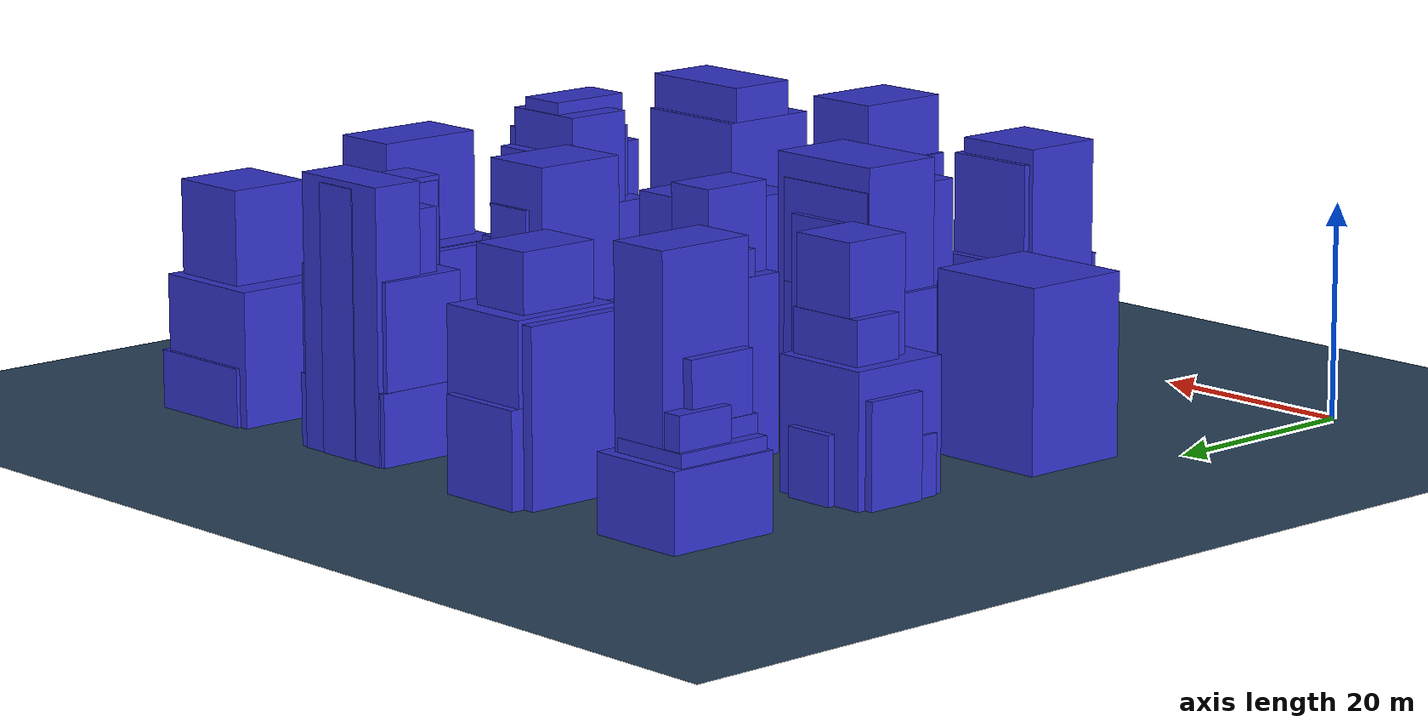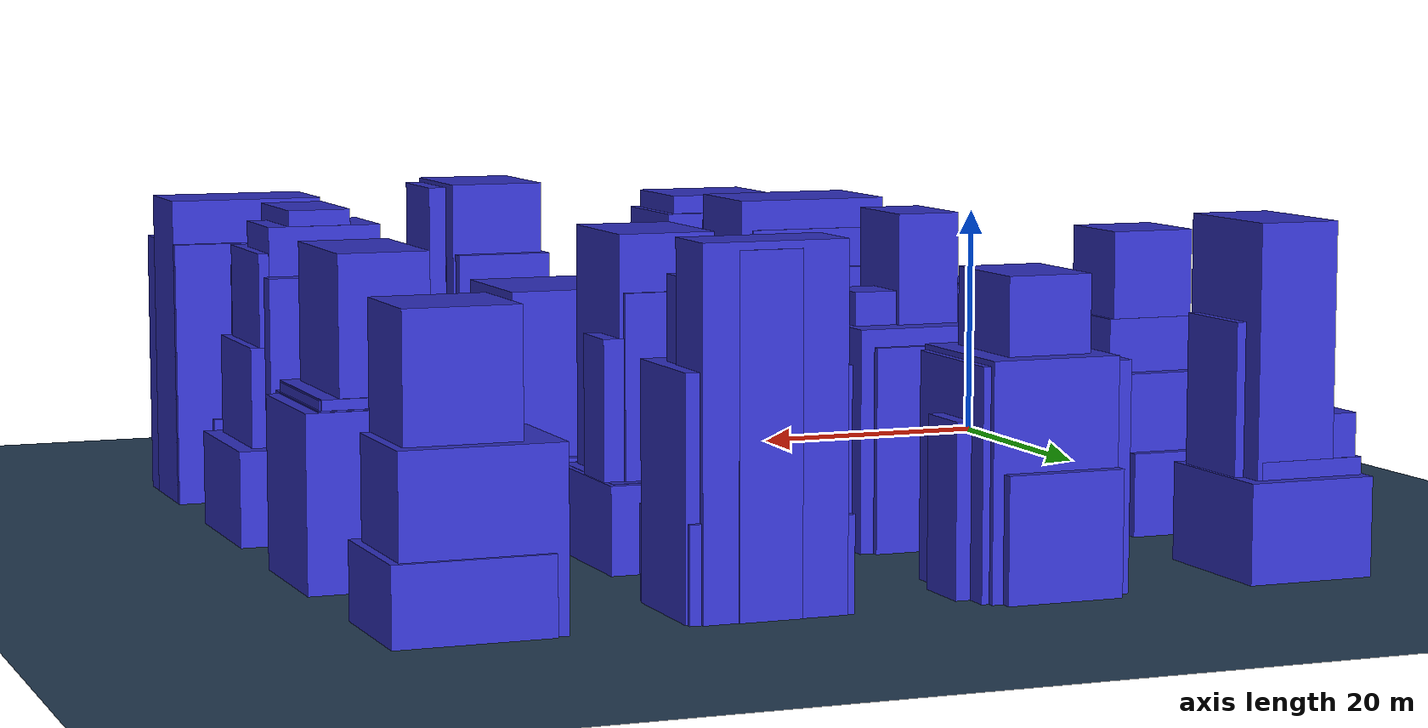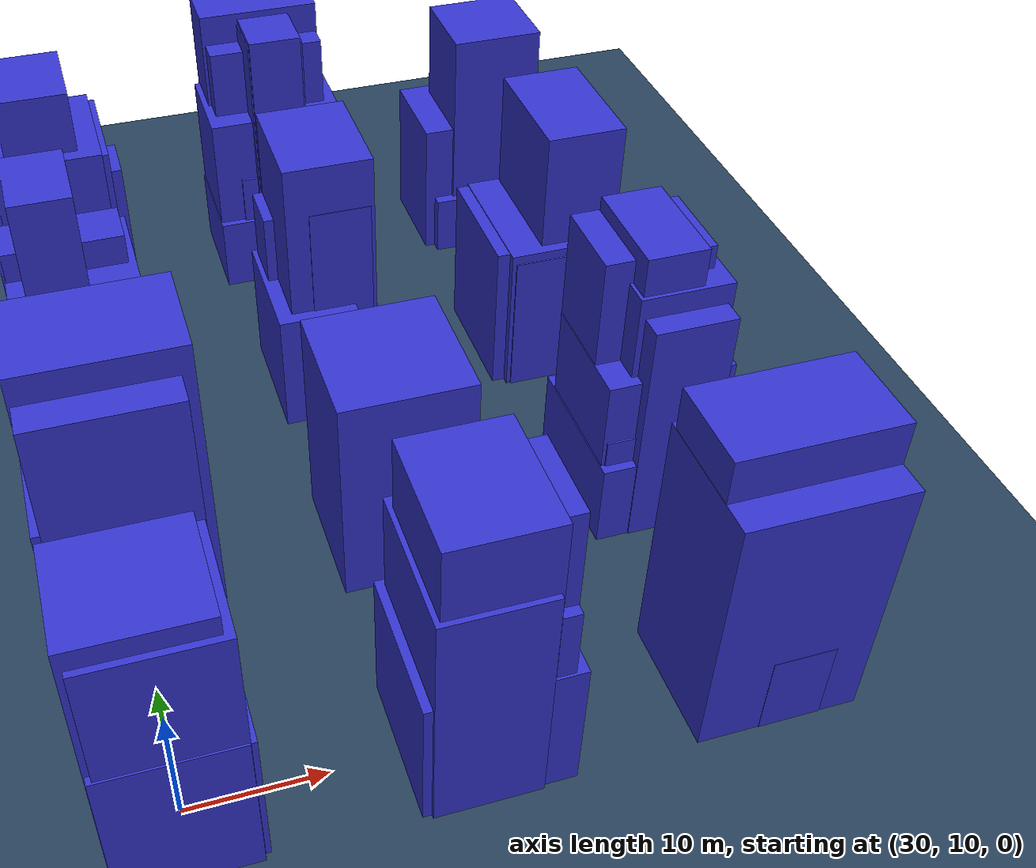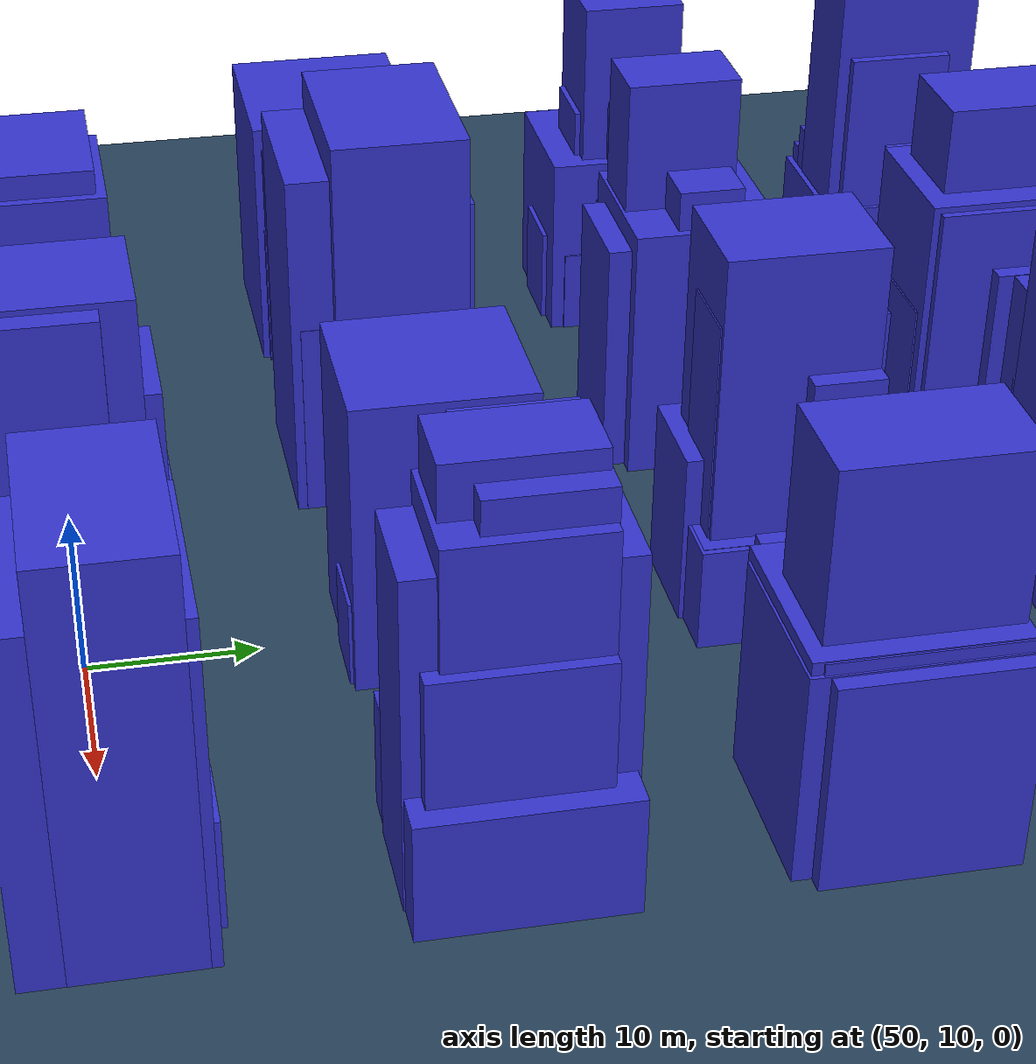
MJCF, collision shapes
<mujoco model="Skydio X2 scene">

  <statistic center="0 0 0.1" extent="0.6" meansize=".05"/>

  <visual>
    <headlight diffuse="0.6 0.6 0.6" ambient="0.3 0.3 0.3" specular="0 0 0"/>
    <map haze=".5" zfar="100" znear="0.01"/>
    <rgba haze="0 0 0 0"/>
    <global azimuth="-20" elevation="20" ellipsoidinertia="true" offwidth="800" offheight="600"/>
  </visual>

  <asset>
    <texture type="skybox" builtin="gradient" rgb1="0.3 0.5 0.7" rgb2="0 0 0" width="512" height="3072"/>
    <texture type="2d" name="groundplane" builtin="checker" mark="edge" rgb1="0.2 0.3 0.4" rgb2="0.1 0.2 0.3"
      markrgb="0.8 0.8 0.8" width="300" height="300"/>
    <material name="groundplane" texture="groundplane" texuniform="true" texrepeat="5 5" reflectance="0.2"/>
    <material name="obstacle_material" rgba="0.2 0.2 0.8 1" specular="0.5" shininess="0.6"/>
  </asset>

  <include file="x2.xml"/>
  <include file="obstacles.xml"/>

  <worldbody>
    <light pos="40 40 50" dir="-1 -1 -2" directional="true"/>
    <geom name="floor" size="0 0 0.05" type="plane" material="groundplane"/>
  </worldbody>
</mujoco>

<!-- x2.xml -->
<mujoco model="Skydio X2">
  <compiler autolimits="true" assetdir="assets"/>

  <option timestep="0.01" density="1.225" viscosity="1.8e-5"/>

  <default>
    <default class="x2">
        <geom mass="0"/>
        <motor ctrlrange="0 13"/>
        <mesh scale="0.01 0.01 0.01"/>

        <default class="visual">
          <geom group="2" type="mesh" contype="0" conaffinity="0"/>
        </default>

        <default class="collision">
          <geom group="3" type="box"/>
          <default class="rotor">
            <geom type="ellipsoid" size=".13 .13 .01"/>
          </default>
      </default>
      <site group="5"/>
    </default>
  </default>

  <asset>
    <texture type="2d" file="X2_lowpoly_texture_SpinningProps_1024.png"/>
    <material name="phong3SG" texture="X2_lowpoly_texture_SpinningProps_1024"/>
    <material name="invisible" rgba="0 0 0 0"/>

    <mesh class="x2" file="X2_lowpoly.obj"/>
  </asset>

  <worldbody>
    <light name="spotlight" mode="targetbodycom" target="x2" pos="0 -1 2"/>
    <body>
      <geom type="cylinder" size="0.4 0.000001"></geom>
    </body>

    <body name="x2" pos="0 0 0" childclass="x2">
      <freejoint/>
      <camera name="track" pos="-1 0 .5" xyaxes="0 -1 0 1 0 2" mode="trackcom"/>
      <site name="imu" pos="0 0 .02"/>
      <geom material="phong3SG" mesh="X2_lowpoly" class="visual" quat="0 0 1 1"/>
      <geom class="collision" size=".06 .027 .02" pos=".04 0 .02"/>
      <geom class="collision" size=".06 .027 .02" pos=".04 0 .06"/>
      <geom class="collision" size=".05 .027 .02" pos="-.07 0 .065"/>
      <geom class="collision" size=".023 .017 .01" pos="-.137 .008 .065" quat="1 0 0 1"/>
      <geom name="rotor1" class="rotor" pos="-.14 -.18 .05" mass=".25"/>
      <geom name="rotor2" class="rotor" pos="-.14 .18 .05" mass=".25"/>
      <geom name="rotor3" class="rotor" pos=".14 .18 .08" mass=".25"/>
      <geom name="rotor4" class="rotor" pos=".14 -.18 .08" mass=".25"/>
      <geom size=".16 .04 .02" pos="0 0 0.02" type="ellipsoid" mass=".325" class="visual" material="invisible"/>
      <site name="thrust1" pos="-.14 -.18 .05"/>
      <site name="thrust2" pos="-.14 .18 .05"/>
      <site name="thrust3" pos=".14 .18 .08"/>
      <site name="thrust4" pos=".14 -.18 .08"/>
    </body>
  </worldbody>

  <actuator>
    <motor class="x2" name="thrust1" site="thrust1" gear="0 0 1 0 0 -.0201"/>
    <motor class="x2" name="thrust2" site="thrust2" gear="0 0 1 0 0  .0201"/>
    <motor class="x2" name="thrust3" site="thrust3" gear="0 0 1 0 0 -.0201"/>
    <motor class="x2" name="thrust4" site="thrust4" gear="0 0 1 0 0  .0201"/>
  </actuator>

  <sensor>
    <gyro name="body_gyro" site="imu"/>
    <accelerometer name="body_linacc" site="imu"/>
    <framepos name="body_pos" objtype="site" objname="imu"/>
    <framequat name="body_quat" objtype="site" objname="imu"/>
    <framelinvel name="body_linvel" objtype="site" objname="imu"/>
  </sensor>

  <keyframe>
    <key name="hover" qpos="0 0 .3 1 0 0 0" ctrl="3.2495625 3.2495625 3.2495625 3.2495625"/>
  </keyframe>
</mujoco>

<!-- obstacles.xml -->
<mujoco>
  <worldbody>
    <geom name="obstacle_0" type="box" pos="10.176185195074712 29.277001570633068 4.80893825622149" size="5.768807022739411 4.253152871382158 4.80893825622149" material="obstacle_material"/>
    <geom name="obstacle_1" type="box" pos="10.447883981068847 30.177890047636268 4.233646535077721" size="2.964101864104047 4.733054075301835 4.233646535077721" material="obstacle_material"/>
    <geom name="obstacle_2" type="box" pos="10.733274155749267 29.66004965196054 4.579416628681888" size="3.564242430292963 2.728944351152249 4.579416628681888" material="obstacle_material"/>
    <geom name="obstacle_3" type="box" pos="10.49918721760701 29.711111708350398 6.451502360018145" size="4.270801311279966 2.1252531698222334 6.451502360018145" material="obstacle_material"/>
    <geom name="obstacle_4" type="box" pos="10.245144888353797 30.012808407537406 7.708342600258237" size="5.706635463175177 4.9090879834256835 7.708342600258237" material="obstacle_material"/>
    <geom name="obstacle_5" type="box" pos="9.582183293439883 29.96998199970414 8.367511656638483" size="5.8446880973973965 5.378135394712606 8.367511656638483" material="obstacle_material"/>
    <geom name="obstacle_6" type="box" pos="10.385738919209246 29.766992707814637 4.152669390630025" size="5.861021229056553 4.4281369907467365 4.152669390630025" material="obstacle_material"/>
    <geom name="obstacle_7" type="box" pos="9.382438511756007 29.460428349170293 2.6407982271508446" size="2.062545626964776 3.693605922825478 2.6407982271508446" material="obstacle_material"/>
    <geom name="obstacle_8" type="box" pos="10.093626586331276 49.92846392761449 6.084657285442726" size="4.827429375390469 4.91602867216395 6.084657285442726" material="obstacle_material"/>
    <geom name="obstacle_9" type="box" pos="10.625497256991594 50.15300810169197 3.1355835028602366" size="2.463476238100519 5.452413703502376 3.1355835028602366" material="obstacle_material"/>
    <geom name="obstacle_10" type="box" pos="10.806409370669732 50.46749366409218 11.372127425763265" size="3.243929286862649 3.30073328810699 11.372127425763265" material="obstacle_material"/>
    <geom name="obstacle_11" type="box" pos="10.473889753420512 51.31520316177082 8.112771975694962" size="3.8888597006477967 2.4783769837532077 8.112771975694962" material="obstacle_material"/>
    <geom name="obstacle_12" type="box" pos="9.99618685340377 49.85148551856407 2.7541912674409517" size="5.083868719818244 3.9751823854575647 2.7541912674409517" material="obstacle_material"/>
    <geom name="obstacle_13" type="box" pos="10.700722356158739 48.932813009197034 7.585706911647028" size="2.431565707973218 2.1257167427469383 7.585706911647028" material="obstacle_material"/>
    <geom name="obstacle_14" type="box" pos="10.112965174566714 51.02365152734686 4.787981654916225" size="5.6302658957043725 2.9971689165954984 4.787981654916225" material="obstacle_material"/>
    <geom name="obstacle_15" type="box" pos="10.05492973675593 70.21330585101013 3.554942598302706" size="4.779139732158818 5.521871356061027 3.554942598302706" material="obstacle_material"/>
    <geom name="obstacle_16" type="box" pos="9.803988447930983 71.62989029483467 5.74345021005274" size="3.8261382819316414 2.873761748867338 5.74345021005274" material="obstacle_material"/>
    <geom name="obstacle_17" type="box" pos="12.043619830535455 69.28230379160155 8.976901205413624" size="2.488351818802694 3.4251913523078983 8.976901205413624" material="obstacle_material"/>
    <geom name="obstacle_18" type="box" pos="8.829500247686646 68.93379033754366 7.840894193754419" size="2.002081507981263 3.4102754253366783 7.840894193754419" material="obstacle_material"/>
    <geom name="obstacle_19" type="box" pos="9.51084049559271 69.88216679982762 4.182910421729305" size="3.9393198854359324 4.769744131561083 4.182910421729305" material="obstacle_material"/>
    <geom name="obstacle_20" type="box" pos="9.591314666265411 69.33202954650784 5.039154139343447" size="2.8750568782922805 4.232408008069363 5.039154139343447" material="obstacle_material"/>
    <geom name="obstacle_21" type="box" pos="10.854387319570865 69.84883017445333 12.47740485048942" size="2.9875042513544052 4.785217091359151 12.47740485048942" material="obstacle_material"/>
    <geom name="obstacle_22" type="box" pos="29.49609295766099 9.562037018586029 11.582658859666537" size="4.438257335919587 4.010716092915446 11.582658859666537" material="obstacle_material"/>
    <geom name="obstacle_23" type="box" pos="29.956930295179177 12.350956641228404 4.920552715115004" size="2.958247562667891 2.5795794883648924 4.920552715115004" material="obstacle_material"/>
    <geom name="obstacle_24" type="box" pos="29.836570327853753 9.978785710539245 6.177831327192532" size="4.688542189623515 5.046478461314869 6.177831327192532" material="obstacle_material"/>
    <geom name="obstacle_25" type="box" pos="30.033683773823647 9.618247448112133 10.85302495589238" size="4.529223322374316 4.534118843043579 10.85302495589238" material="obstacle_material"/>
    <geom name="obstacle_26" type="box" pos="28.423132288758175 10.409731928174814 9.275643618422825" size="3.2831202598869424 2.7460740415994165 9.275643618422825" material="obstacle_material"/>
    <geom name="obstacle_27" type="box" pos="28.39526938152413 10.276300916675773 4.243664290049915" size="2.066351315711424 4.048372233197124 4.243664290049915" material="obstacle_material"/>
    <geom name="obstacle_28" type="box" pos="30.20635408778621 8.946593370415089 5.9106635105025855" size="4.763750952409865 3.5469413852021496 5.9106635105025855" material="obstacle_material"/>
    <geom name="obstacle_29" type="box" pos="30.84724270258061 29.54710845633091 4.249549270959362" size="2.8362864829508556 4.165791895310264 4.249549270959362" material="obstacle_material"/>
    <geom name="obstacle_30" type="box" pos="30.444223154018864 30.926462418779757 12.154193512887936" size="5.928673373317743 4.066543565084055 12.154193512887936" material="obstacle_material"/>
    <geom name="obstacle_31" type="box" pos="29.522584918587732 30.23463756133262 9.503578299727714" size="4.233173814428392 5.5305453727573575 9.503578299727714" material="obstacle_material"/>
    <geom name="obstacle_32" type="box" pos="30.073842828054758 29.670164950701945 11.009284487675128" size="5.3866445689532245 5.425297167512371 11.009284487675128" material="obstacle_material"/>
    <geom name="obstacle_33" type="box" pos="29.749038930501726 29.977187858098013 6.222827665617431" size="5.742539976883789 5.141362604455773 6.222827665617431" material="obstacle_material"/>
    <geom name="obstacle_34" type="box" pos="29.76528397211858 50.290429374911334 9.418951976926932" size="4.654007076432224 2.0202463353848756 9.418951976926932" material="obstacle_material"/>
    <geom name="obstacle_35" type="box" pos="30.16641426896505 48.894910250638596 5.753996981592677" size="4.607845038010401 2.8970772378422396 5.753996981592677" material="obstacle_material"/>
    <geom name="obstacle_36" type="box" pos="30.009802267765807 50.126553192583756 8.183086033354716" size="4.985965620472099 4.5985315961888595 8.183086033354716" material="obstacle_material"/>
    <geom name="obstacle_37" type="box" pos="28.767171115642356 49.217050291285645 12.230105547524456" size="2.374699071312371 3.4708632122377345 12.230105547524456" material="obstacle_material"/>
    <geom name="obstacle_38" type="box" pos="30.374429392019984 49.66498455923707 7.526370931051921" size="3.5723908986670434 5.568186220708451 7.526370931051921" material="obstacle_material"/>
    <geom name="obstacle_39" type="box" pos="29.82499613524748 70.00073671883598 8.220041992091831" size="4.675696238652398 5.456670260287616 8.220041992091831" material="obstacle_material"/>
    <geom name="obstacle_40" type="box" pos="29.92659282197979 69.83015134436091 5.295603417967586" size="5.074216057225236 2.174415087017735 5.295603417967586" material="obstacle_material"/>
    <geom name="obstacle_41" type="box" pos="29.516140934121353 69.99691122541728 8.027649668354899" size="5.533976089065034 4.990875095589658 8.027649668354899" material="obstacle_material"/>
    <geom name="obstacle_42" type="box" pos="29.39628665357992 70.35803290614666 4.4091103115034604" size="4.289169876683353 5.921326334864183 4.4091103115034604" material="obstacle_material"/>
    <geom name="obstacle_43" type="box" pos="29.509564203661597 69.77698169483222 10.942131407263114" size="3.073899427560626 3.9411194971052623 10.942131407263114" material="obstacle_material"/>
    <geom name="obstacle_44" type="box" pos="30.419196249020487 70.93045098674644 6.086467812961639" size="5.720067339243329 2.2816645233981774 6.086467812961639" material="obstacle_material"/>
    <geom name="obstacle_45" type="box" pos="29.296113747717634 71.2683474982903 3.866213314420288" size="3.016654596278956 3.1811623536757523 3.866213314420288" material="obstacle_material"/>
    <geom name="obstacle_46" type="box" pos="29.933110437308677 69.87345909937319 5.062069435944581" size="4.8356439876404735 4.211279907631635 5.062069435944581" material="obstacle_material"/>
    <geom name="obstacle_47" type="box" pos="50.6838829699678 8.178324901852042 3.209409169999277" size="2.326376721600962 2.020739451095947 3.209409169999277" material="obstacle_material"/>
    <geom name="obstacle_48" type="box" pos="51.09247543748664 7.35755825187919 8.288648955075587" size="3.5871353088555544 2.2030741241575877 8.288648955075587" material="obstacle_material"/>
    <geom name="obstacle_49" type="box" pos="49.5717208722245 9.784818093551538 12.318408883105311" size="3.7538964920723465 4.688104541180797 12.318408883105311" material="obstacle_material"/>
    <geom name="obstacle_50" type="box" pos="50.17768816917106 10.407318200991375 5.532655146732228" size="5.355734008277452 5.441618473246701 5.532655146732228" material="obstacle_material"/>
    <geom name="obstacle_51" type="box" pos="50.558472579871236 9.226263816875122 12.152518303907698" size="4.148329708786623 3.306604967184163 12.152518303907698" material="obstacle_material"/>
    <geom name="obstacle_52" type="box" pos="49.28427510915097 10.06525988995591 9.49512210767194" size="3.829060646454913 5.368092300047925 9.49512210767194" material="obstacle_material"/>
    <geom name="obstacle_53" type="box" pos="52.29752618212967 11.059678483354578 2.910675167678758" size="2.553412369671207 2.5309816889718793 2.910675167678758" material="obstacle_material"/>
    <geom name="obstacle_54" type="box" pos="50.685621403019674 9.369220187641188 4.3433367433137" size="3.59528360577918 3.734082950322968 4.3433367433137" material="obstacle_material"/>
    <geom name="obstacle_55" type="box" pos="51.009043035136656 8.863018198370485 11.652137276264805" size="2.323491866468789 3.7132578997604306 11.652137276264805" material="obstacle_material"/>
    <geom name="obstacle_56" type="box" pos="48.705553783065085 32.28129481727298 8.882705938433503" size="2.9591494366296125 2.375493160325167 8.882705938433503" material="obstacle_material"/>
    <geom name="obstacle_57" type="box" pos="49.87993797210121 30.170944372065257 2.9771612769164877" size="4.066785029706267 4.6284453140006665 2.9771612769164877" material="obstacle_material"/>
    <geom name="obstacle_58" type="box" pos="49.44099543245889 29.251959833702326 3.4179906581344186" size="4.264148841976304 2.6345857905699646 3.4179906581344186" material="obstacle_material"/>
    <geom name="obstacle_59" type="box" pos="52.51586903398452 28.860833420239544 2.6716110183175026" size="2.376627953074241 3.245653237565177 2.6716110183175026" material="obstacle_material"/>
    <geom name="obstacle_60" type="box" pos="50.01643243253467 30.016084147787677 8.997736826427634" size="5.053457692015645 5.227651908203118 8.997736826427634" material="obstacle_material"/>
    <geom name="obstacle_61" type="box" pos="52.17141477641519 30.380936114462237 2.6530454029038477" size="2.192235696788135 5.796582926365543 2.6530454029038477" material="obstacle_material"/>
    <geom name="obstacle_62" type="box" pos="50.31340562912773 50.287152474641196 3.205687474004298" size="4.01254503432035 5.4259593647532895 3.205687474004298" material="obstacle_material"/>
    <geom name="obstacle_63" type="box" pos="50.07382239156537 52.5480128034279 8.25474177875879" size="4.569677112825261 2.1060452421664877 8.25474177875879" material="obstacle_material"/>
    <geom name="obstacle_64" type="box" pos="49.879157122287054 50.03894279085475 11.91464808776525" size="3.5526797048260867 4.573152873769413 11.91464808776525" material="obstacle_material"/>
    <geom name="obstacle_65" type="box" pos="51.18004823498859 50.513968334112654 3.1936130087516545" size="3.5444105512030966 5.844762255295656 3.1936130087516545" material="obstacle_material"/>
    <geom name="obstacle_66" type="box" pos="47.893627587412084 51.07136290035218 3.2118864846022896" size="2.4031120055097084 2.0728873026061976 3.2118864846022896" material="obstacle_material"/>
    <geom name="obstacle_67" type="box" pos="48.35614869263408 49.76131763939426 5.318547747734" size="3.2759025211750448 5.379501243877819 5.318547747734" material="obstacle_material"/>
    <geom name="obstacle_68" type="box" pos="50.65176500657698 50.16084183548922 9.850710438038858" size="2.4726593104866232 4.786948661456602 9.850710438038858" material="obstacle_material"/>
    <geom name="obstacle_69" type="box" pos="50.1332098766394 70.11074419108249 8.259245752580846" size="5.8703222060809885 4.191887532992347 8.259245752580846" material="obstacle_material"/>
    <geom name="obstacle_70" type="box" pos="49.963297925639594 70.4009869289211 11.17116607209722" size="4.926591021198561 2.510758917689863 11.17116607209722" material="obstacle_material"/>
    <geom name="obstacle_71" type="box" pos="50.270678346746465 70.98152074765275 4.882361524039794" size="4.247466768575094 2.9543874391613585 4.882361524039794" material="obstacle_material"/>
    <geom name="obstacle_72" type="box" pos="49.989758645002894 69.8095492302269 5.476351745093108" size="3.510915544705181 4.137309894122254 5.476351745093108" material="obstacle_material"/>
    <geom name="obstacle_73" type="box" pos="52.3844712227 71.9343224319674 6.049051904627206" size="2.3999395486474526 2.213941186989473 6.049051904627206" material="obstacle_material"/>
    <geom name="obstacle_74" type="box" pos="50.028917464680575 69.99591414601642 3.3328441119525962" size="5.827203540505824 4.707079617697211 3.3328441119525962" material="obstacle_material"/>
    <geom name="obstacle_75" type="box" pos="50.28281997311041 69.66088315340272 11.961945428816902" size="2.366816589033924 4.409763703604476 11.961945428816902" material="obstacle_material"/>
    <geom name="obstacle_76" type="box" pos="49.892108967671206 72.41500617729571 12.459312420303291" size="5.12518420188481 2.4538584080697916 12.459312420303291" material="obstacle_material"/>
    <geom name="obstacle_77" type="box" pos="50.25497168421379 70.02134792466694 12.18651943974135" size="2.2234846187093993 4.948142227164034 12.18651943974135" material="obstacle_material"/>
    <geom name="obstacle_78" type="box" pos="70.0367306398048 9.561542315649989 9.5096913145912" size="5.04604252686989 4.472872253265043 9.5096913145912" material="obstacle_material"/>
    <geom name="obstacle_79" type="box" pos="71.11739892704173 10.240674411560425 3.348377140851919" size="2.2910520254567714 5.287440237161425 3.348377140851919" material="obstacle_material"/>
    <geom name="obstacle_80" type="box" pos="70.24488950235127 10.94022345994793 11.972485773838587" size="5.9465583140047045 3.4970831830244817 11.972485773838587" material="obstacle_material"/>
    <geom name="obstacle_81" type="box" pos="70.23362295562069 10.011256093913667 10.271469159274368" size="5.944004255291482 5.0135127410357665 10.271469159274368" material="obstacle_material"/>
    <geom name="obstacle_82" type="box" pos="70.62284618628297 8.986693575887848 7.426251042908591" size="4.233616998943219 3.6968880369879047 7.426251042908591" material="obstacle_material"/>
    <geom name="obstacle_83" type="box" pos="70.66469827505779 30.38161191045012 10.727903518766931" size="3.620808347125667 4.285892100820043 10.727903518766931" material="obstacle_material"/>
    <geom name="obstacle_84" type="box" pos="69.98784477924542 29.944954508238737 7.2771489088022765" size="4.976846627773192 4.724157708387638 7.2771489088022765" material="obstacle_material"/>
    <geom name="obstacle_85" type="box" pos="69.66023264614046 30.535651489734292 12.279006687542708" size="2.3315652867734187 4.113480485188838 12.279006687542708" material="obstacle_material"/>
    <geom name="obstacle_86" type="box" pos="69.29137642080083 31.451647001053438 11.691157152786595" size="4.22402015457034 3.2907455531103356 11.691157152786595" material="obstacle_material"/>
    <geom name="obstacle_87" type="box" pos="68.31189436457211 29.85423260242875 4.668091065864912" size="3.011960671956963 4.78164449242659 4.668091065864912" material="obstacle_material"/>
    <geom name="obstacle_88" type="box" pos="70.7176044397196 30.227734584143438 9.871007058430193" size="3.177975787357717 5.983325500117484 9.871007058430193" material="obstacle_material"/>
    <geom name="obstacle_89" type="box" pos="70.58451928403355 30.176108436476262 3.567560659358844" size="5.661017366676425 5.834809629631385 3.567560659358844" material="obstacle_material"/>
    <geom name="obstacle_90" type="box" pos="70.48676112526792 29.481279182872793 4.793947457049496" size="3.342640259187853 2.6787196155822635 4.793947457049496" material="obstacle_material"/>
    <geom name="obstacle_91" type="box" pos="69.07040666000492 29.854240532982445 2.8231595110965046" size="3.063751699856958 3.4413803808210712 2.8231595110965046" material="obstacle_material"/>
    <geom name="obstacle_92" type="box" pos="70.65095183936823 50.17218687202627 11.609271844938425" size="3.2381104651453114 5.255180078827795 11.609271844938425" material="obstacle_material"/>
    <geom name="obstacle_93" type="box" pos="69.86901543350028 49.81871722948834 6.682430362906189" size="5.290148971692673 5.799199653167694 6.682430362906189" material="obstacle_material"/>
    <geom name="obstacle_94" type="box" pos="70.66481202135373 50.439773529085556 6.264633668780496" size="5.730913933416055 5.464255558001636 6.264633668780496" material="obstacle_material"/>
    <geom name="obstacle_95" type="box" pos="70.16934737302999 49.82132022569279 6.308908566310215" size="5.242213323127331 5.94910451725978 6.308908566310215" material="obstacle_material"/>
    <geom name="obstacle_96" type="box" pos="69.40477317312045 50.02307161925175 6.648195023376652" size="5.879657591258411 5.368475692542834 6.648195023376652" material="obstacle_material"/>
    <geom name="obstacle_97" type="box" pos="71.1293174830541 70.18537122607415 9.999107494699718" size="2.0546878593079896 2.3014362414098457 9.999107494699718" material="obstacle_material"/>
    <geom name="obstacle_98" type="box" pos="69.70483857900706 70.33903965109624 6.278505492757864" size="5.652663009030569 4.340598129301888 6.278505492757864" material="obstacle_material"/>
    <geom name="obstacle_99" type="box" pos="68.98804229942726 69.01791232360263 4.572276490080565" size="2.964339329318527 2.820181314026101 4.572276490080565" material="obstacle_material"/>
    <geom name="obstacle_100" type="box" pos="70.46477789869593 70.01295273498702 2.7218474203030163" size="5.51288266991677 5.0279965286889166 2.7218474203030163" material="obstacle_material"/>
    <geom name="obstacle_101" type="box" pos="70.66760701880611 69.57897171532498 10.663857352130623" size="3.9926607465835744 3.9048427871560563 10.663857352130623" material="obstacle_material"/>
  </worldbody>
</mujoco>
